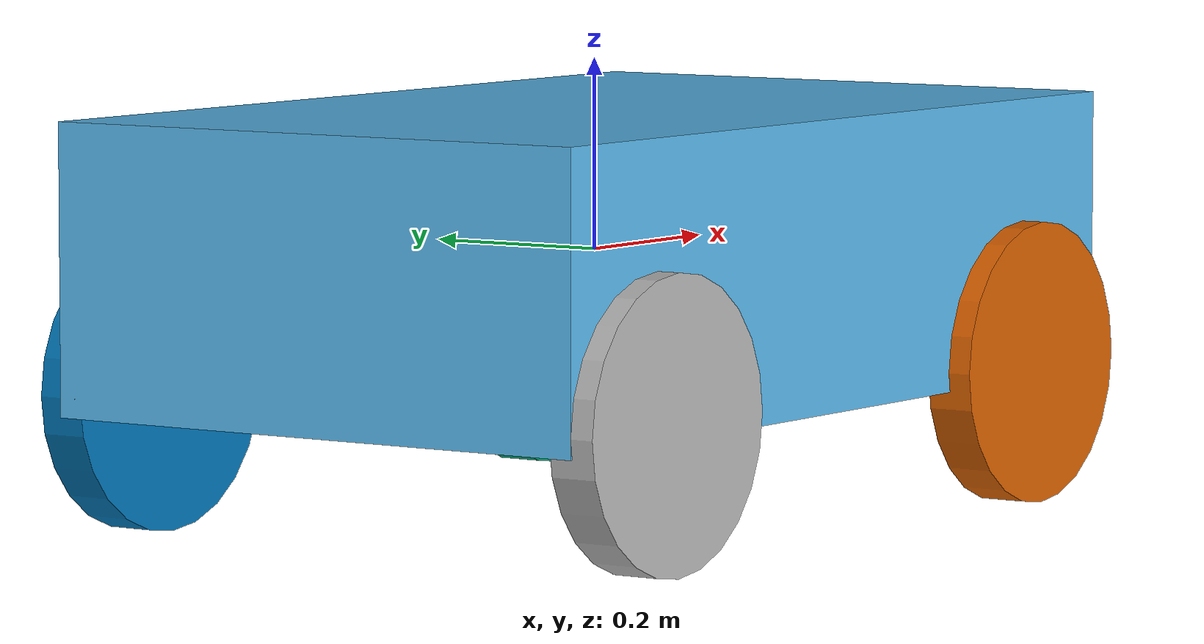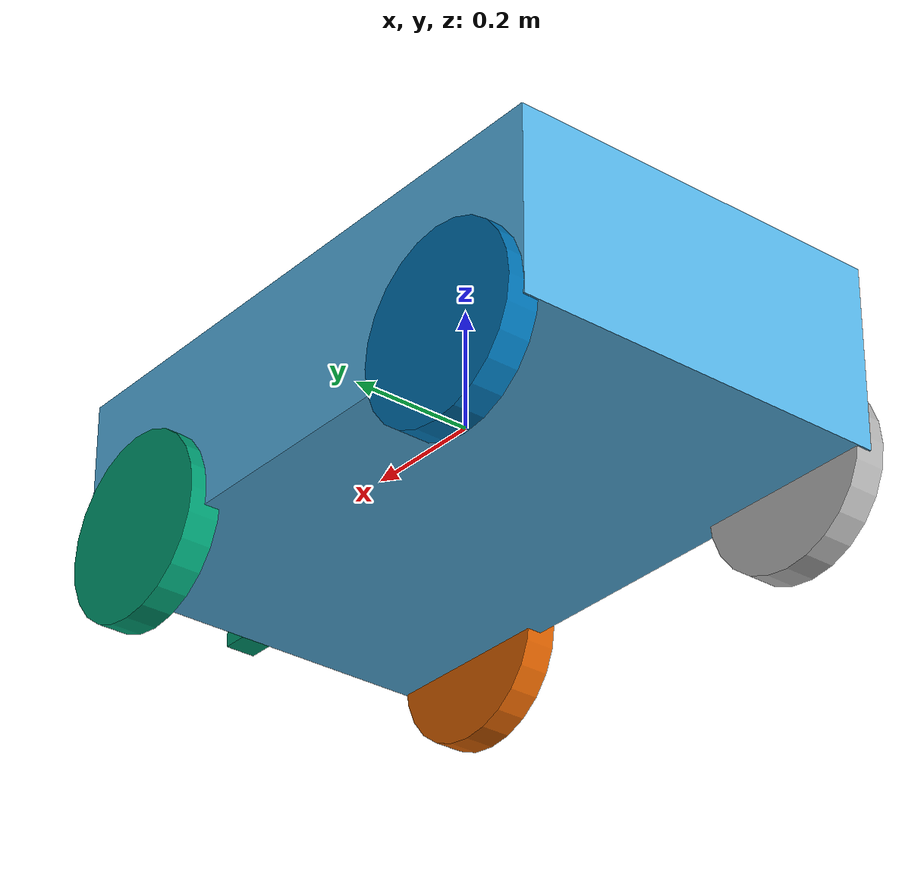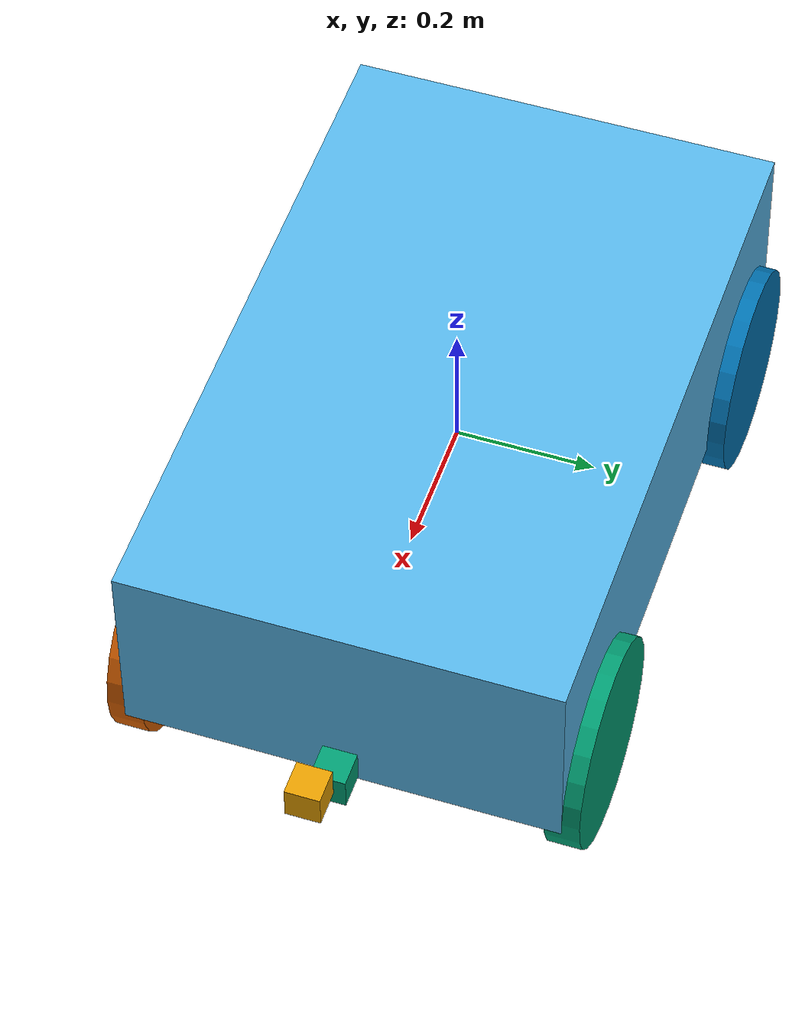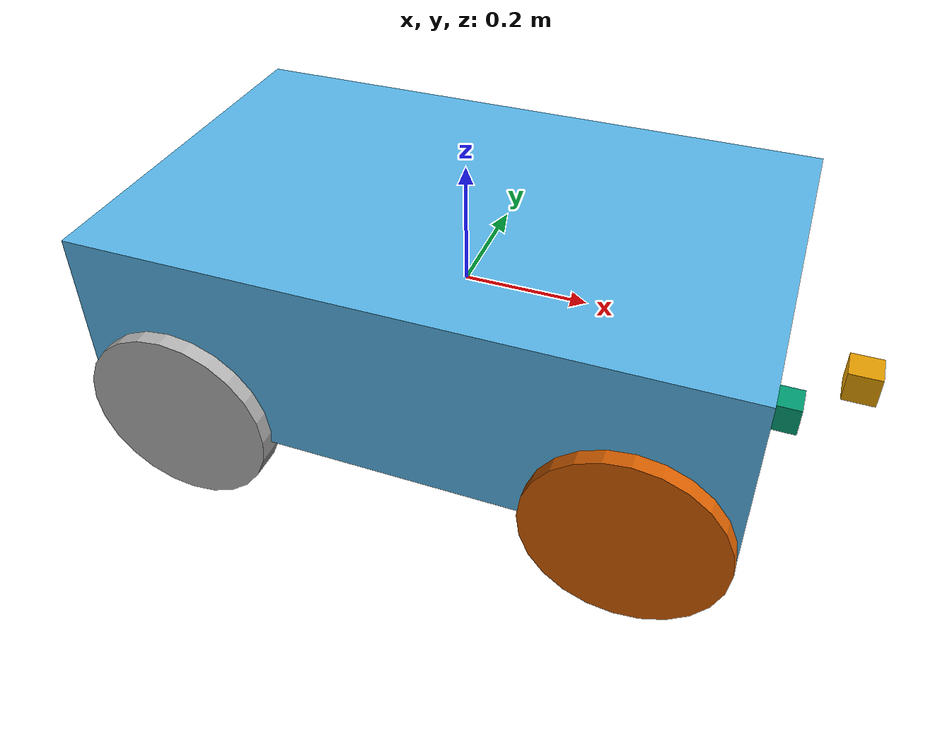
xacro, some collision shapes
<?xml version='1.0'?>

<robot name="my_udacity_bot" xmlns:xacro="http://www.ros.org/wiki/xacro">

  <!-- Load in the plugins for the drive wheels and the camera and ray-laser sensor -->
  <xacro:include filename="$(find map_my_world)/urdf/udacity_bot.gazebo"/>

  <!-- Joint descriptions. Use robot_footprint as a base link -->
  <link name="robot_footprint"/>

  <joint name="robot_footprint_joint" type="fixed">
    <origin xyz="0 0 0" rpy="0 0 0" />
    <parent link="robot_footprint"/>
    <child link="chassis"/>
  </joint>

  <joint name="left_front_wheel_hinge" type="continuous">
    <origin xyz=".35 0.3125 -0.130" rpy="0 0 0"/>
    <child link="left_front_wheel"/>
    <parent link="chassis"/>
    <axis xyz="0 1 0" rpy="0 0 0"/>
    <limit effort="10000" velocity="1000"/>
    <dynamics damping="1.0" friction="1.0"/>
  </joint>

  <joint name="left_wheel_hinge" type="continuous">
    <origin xyz="0 0.3125 -.130" rpy="0 0 0"/>
    <child link="left_wheel"/>
    <parent link="chassis"/>
    <axis xyz="0 1 0" rpy="0 0 0"/>
    <limit effort="10000" velocity="1000"/>
    <dynamics damping="1.0" friction="1.0"/>
  </joint>

  <joint name="left_rear_wheel_hinge" type="continuous">
    <origin xyz="-.35 0.3125 -0.130" rpy="0 0 0"/>
    <child link="left_rear_wheel"/>
    <parent link="chassis"/>
    <axis xyz="0 1 0" rpy="0 0 0"/>
    <limit effort="10000" velocity="1000"/>
    <dynamics damping="1.0" friction="1.0"/>
  </joint>

  <joint name="right_front_wheel_hinge" type="continuous">
    <origin xyz="0.35 -0.3125 -0.130" rpy="0 0 0"/>
    <child link="right_front_wheel"/>
    <parent link="chassis"/>
    <axis xyz="0 1 0" rpy="0 0 0"/>
    <limit effort="10000" velocity="1000"/>
    <dynamics damping="1.0" friction="1.0"/>
  </joint>

  <joint name="right_wheel_hinge" type="continuous">
    <origin xyz="0 -0.3125 -0.130" rpy="0 0 0"/>
    <child link="right_wheel"/>
    <parent link="chassis"/>
    <axis xyz="0 1 0" rpy="0 0 0"/>
    <limit effort="10000" velocity="1000"/>
    <dynamics damping="1.0" friction="1.0"/>
  </joint>

  <joint name="right_rear_wheel_hinge" type="continuous">
    <origin xyz="-0.35 -0.3125 -0.130" rpy="0 0 0"/>
    <child link="right_rear_wheel"/>
    <parent link="chassis"/>
    <axis xyz="0 1 0" rpy="0 0 0"/>
    <limit effort="10000" velocity="1000"/>
    <dynamics damping="1.0" friction="1.0"/>
  </joint>

  <joint name="camera_joint" type="fixed">
    <origin xyz="0.62 0 -.03" rpy="0  0  0"/>
    <parent link="chassis"/>
    <child link="camera"/>
  </joint>

  <!-- generate an optical frame
      http://www.ros.org/reps/rep-0103.html#suffix-frames
      so that ros and opencv can operate on the camera frame correctly
      -->
  <joint name="camera_optical_joint" type="fixed">
    <!-- these values have to be these values otherwise the gazebo camera
        image won't be aligned properly with the frame it is supposedly
        originating from -->
    <origin xyz="0 0 0" rpy="${-pi/2} 0 ${-pi/2}"/>
    <parent link="camera"/>
    <child link="camera_link_optical"/>
  </joint>

  <joint name="hokuyo_joint" type="fixed">
    <origin xyz="0.525 0.0 -.12" rpy="0 0 0"/>
    <parent link="chassis"/>
    <child link="hokuyo"/>
  </joint>

  <!-- Link descriptions -->

  <link name='chassis'>

    <pose> 0 0 0.230 0 0 0</pose>

    <inertial>
      <mass value="15.0"/>
      <origin xyz="0.0 0 0" rpy=" 0 0 0"/>
      <inertia
        ixx="0.1" ixy="0" ixz="0"
        iyy="0.1" iyz="0"
        izz="0.1"
      />
    </inertial>

    <collision name='collision'>
      <origin xyz="0 0 0" rpy=" 0 0 0"/>
      <geometry>
        <box size="1.25 .625 .05"/>
      </geometry>
    </collision>

    <visual name='chassis_visual'>
      <origin xyz="0 0 0" rpy=" 0 0 0"/>
      <geometry>
        <box size="1.0 .625 .3"/>
      </geometry>
    </visual>
  </link>

  <link name="left_front_wheel">

    <inertial>
      <mass value="5"/>
      <origin xyz="0 0 0" rpy="0 1.5707 1.5707"/>
      <inertia
        ixx="0.1" ixy="0" ixz="0"
        iyy="0.1" iyz="0"
        izz="0.1"
      />
    </inertial>

    <visual>
      <origin xyz="0 0 0" rpy="0 1.5707 1.5707"/>
      <geometry>
        <cylinder radius="0.15" length="0.05"/>
      </geometry>
    </visual>

    <collision>
      <origin xyz="0 0 0" rpy="0 1.5707 1.5707"/>
      <geometry>
        <cylinder radius="0.0999" length="0.05"/>
      </geometry>
    </collision>
  </link>

 <link name="left_wheel">

    <inertial>
      <mass value="5"/>
      <origin xyz="0 0 0" rpy="0 1.5707 1.5707"/>
      <inertia
        ixx="0.1" ixy="0" ixz="0"
        iyy="0.1" iyz="0"
        izz="0.1"
      />
    </inertial>

    <visual>
      <origin xyz="0 0 0" rpy="0 1.5707 1.5707"/>
      <geometry>
        <cylinder radius="0.0001" length="0.0001"/>
      </geometry>
    </visual>

    <collision>
      <origin xyz="0 0 0" rpy="0 1.5707 1.5707"/>
      <geometry>
        <cylinder radius="0.1" length="0.05"/>
      </geometry>
    </collision>
  </link>

 <link name="left_rear_wheel">

    <inertial>
      <mass value="5"/>
      <origin xyz="0 0 0" rpy="0 1.5707 1.5707"/>
      <inertia
        ixx="0.1" ixy="0" ixz="0"
        iyy="0.1" iyz="0"
        izz="0.1"
      />
    </inertial>

    <visual>
      <origin xyz="0 0 0" rpy="0 1.5707 1.5707"/>
      <geometry>
        <cylinder radius="0.15" length="0.05"/>
      </geometry>
    </visual>

    <collision>
      <origin xyz="0 0 0" rpy="0 1.5707 1.5707"/>
      <geometry>
        <cylinder radius="0.0999" length="0.05"/>
      </geometry>
    </collision>
  </link>

  <link name="right_front_wheel">

    <inertial>
      <mass value="5"/>
      <origin xyz="0 0 0" rpy="0 1.5707 1.5707"/>
      <inertia
        ixx="0.1" ixy="0" ixz="0"
        iyy="0.1" iyz="0"
        izz="0.1"
      />
    </inertial>

    <visual>
      <origin xyz="0 0 0" rpy="0 1.5707 1.5707"/>
      <geometry>
        <cylinder radius="0.15" length="0.05"/>
      </geometry>
    </visual>

    <collision>
      <origin xyz="0 0 0" rpy="0 1.5707 1.5707"/>
      <geometry>
        <cylinder radius="0.0999" length="0.05"/>
      </geometry>
    </collision>
  </link>

  <link name="right_wheel">

    <inertial>
      <mass value="5"/>
      <origin xyz="0 0 0" rpy="0 1.5707 1.5707"/>
      <inertia
        ixx="0.1" ixy="0" ixz="0"
        iyy="0.1" iyz="0"
        izz="0.1"
      />
    </inertial>

    <visual>
      <origin xyz="0 0 0" rpy="0 1.5707 1.5707"/>
      <geometry>
        <cylinder radius="0.0001" length="0.0001"/>
      </geometry>
    </visual>

    <collision>
      <origin xyz="0 0 0" rpy="0 1.5707 1.5707"/>
      <geometry>
        <cylinder radius="0.1" length="0.05"/>
      </geometry>
    </collision>
  </link>

  <link name="right_rear_wheel">

    <inertial>
      <mass value="5"/>
      <origin xyz="0 0 0" rpy="0 1.5707 1.5707"/>
      <inertia
        ixx="0.1" ixy="0" ixz="0"
        iyy="0.1" iyz="0"
        izz="0.1"
      />
    </inertial>

    <visual>
      <origin xyz="0 0 0" rpy="0 1.5707 1.5707"/>
      <geometry>
        <cylinder radius="0.15" length="0.05"/>
      </geometry>
    </visual>

    <collision>
      <origin xyz="0 0 0" rpy="0 1.5707 1.5707"/>
      <geometry>
        <cylinder radius="0.0999" length="0.05"/>
      </geometry>
    </collision>
  </link>

  <!-- Kinect Camera -->

  <link name="camera">
    <inertial>
      <mass value="0.1"/>
      <origin xyz="0 0 0" rpy="0 0 0"/>
      <inertia
        ixx="1e-6" ixy="0" ixz="0"
        iyy="1e-6" iyz="0"
        izz="1e-6"
       />
    </inertial>

    <visual>
      <origin xyz="0 0 0" rpy="0 0 0"/>
      <geometry>
        <mesh filename="package://map_my_world/meshes/kinect.dae"/>
      </geometry>
    </visual>

    <collision>
      <origin xyz="0 0 0" rpy="0 0 0"/>
      <geometry>
        <box size=".05 .05 .05"/>
      </geometry>
    </collision>
  </link>

  <link name="camera_link_optical">
  </link>

  <!-- Laser Scanner -->

  <link name="hokuyo">
    <inertial>
      <mass value="0.1"/>
      <origin xyz="0 0 0" rpy="0 0 0"/>
      <inertia
        ixx="1e-6" ixy="0" ixz="0"
        iyy="1e-6" iyz="0"
        izz="1e-6"
       />
    </inertial>

    <visual>
      <origin xyz="0 0 0" rpy="0 0 0"/>
      <geometry>
        <mesh filename="package://map_my_world/meshes/hokuyo.dae"/>
      </geometry>
    </visual>

    <collision>
      <origin xyz="0 0 0" rpy="0 0 0"/>
      <geometry>
        <box size="0.05 0.05 0.05"/>
      </geometry>
    </collision>
  </link>

</robot>
